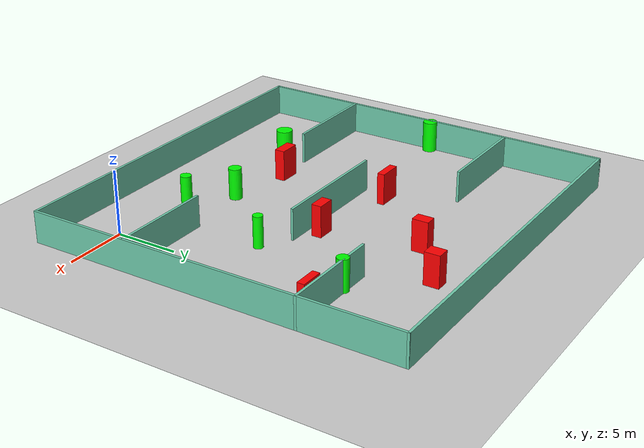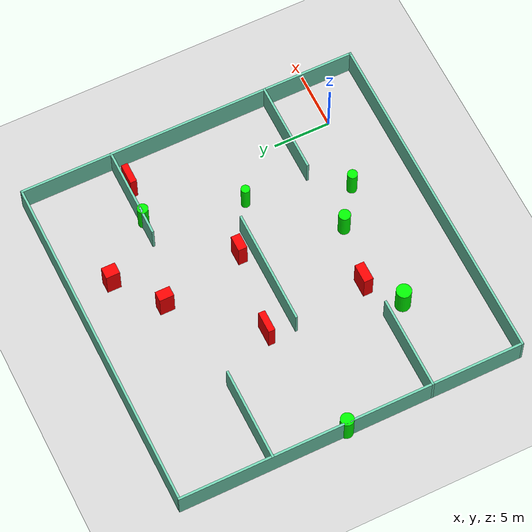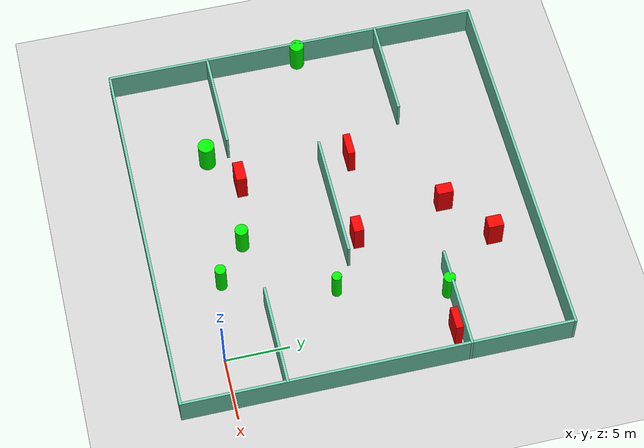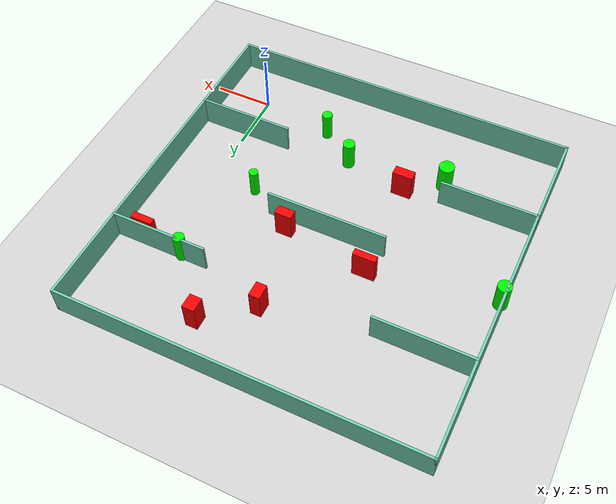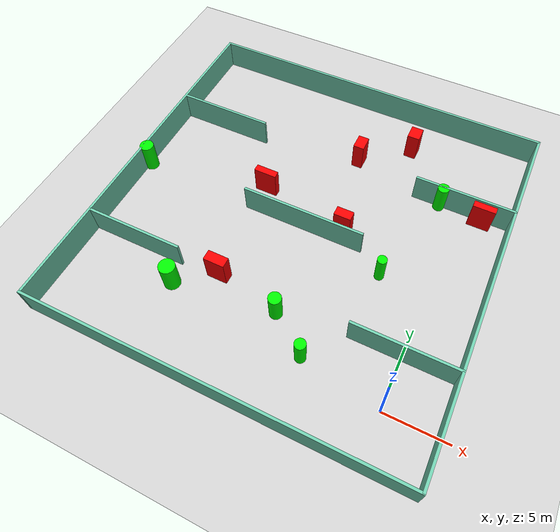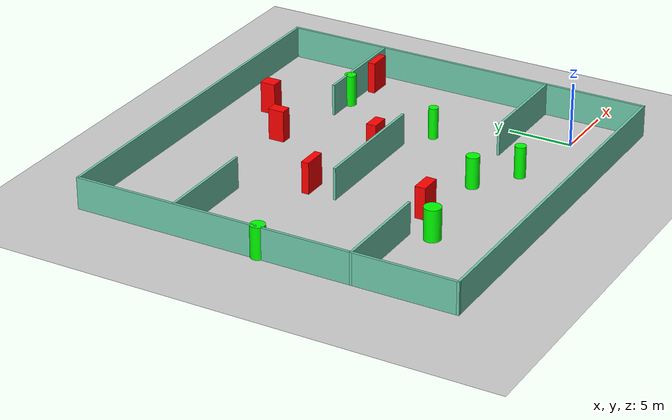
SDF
<sdf version="1.7">
 <world name="default">
  <light name="sun" type="directional">
   <pose>0 0 10 0 -0 0</pose>
   <diffuse>0.8 0.8 0.8 1</diffuse>
   <specular>0.2 0.2 0.2 1</specular>
   <attenuation>
    <range>1000</range>
    <constant>0.9</constant>
    <linear>0.01</linear>
    <quadratic>0.001</quadratic>
   </attenuation>
   <direction>-0.5 0.1 -0.9</direction>
   <spot><inner_angle>0</inner_angle><outer_angle>0</outer_angle><falloff>0</falloff></spot>
  </light>
  <model name="ground_plane">
   <static>1</static>
   <link name="link">
    <collision name="collision">
     <geometry><plane><normal>0 0 1</normal><size>100 100</size></plane></geometry>
     <surface>
      <contact><collide_bitmask>65535</collide_bitmask></contact>
      <friction><ode><mu>100</mu><mu2>50</mu2></ode></friction>
     </surface>
    </collision>
    <visual name="visual">
     <cast_shadows>0</cast_shadows>
     <geometry><plane><normal>0 0 1</normal><size>100 100</size></plane></geometry>
     <material>
      <script><uri>file://media/materials/scripts/gazebo.material</uri><name>Gazebo/Grey</name></script>
     </material>
    </visual>
   </link>
  </model>
  <gravity>0 0 -9.8</gravity>
  <magnetic_field>6e-06 2.3e-05 -4.2e-05</magnetic_field>
  <atmosphere type="adiabatic"/>
  <physics type="ode">
   <max_step_size>0.001</max_step_size>
   <real_time_factor>1</real_time_factor>
   <real_time_update_rate>1000</real_time_update_rate>
  </physics>
  <scene><ambient>0.4 0.4 0.4 1</ambient><background>0.7 0.7 0.7 1</background><shadows>1</shadows></scene>
  <spherical_coordinates>
   <surface_model>EARTH_WGS84</surface_model>
   <latitude_deg>0</latitude_deg>
   <longitude_deg>0</longitude_deg>
   <elevation>0</elevation>
   <heading_deg>0</heading_deg>
  </spherical_coordinates>
  <model name="my_base_walls">
   <link name="Wall_10">
    <collision name="Wall_10_Collision">
     <geometry><box><size>8.2 0.2 2.5</size></box></geometry>
     <pose>0 0 1.25 0 -0 0</pose>
    </collision>
    <visual name="Wall_10_Visual">
     <pose>0 0 1.25 0 -0 0</pose>
     <geometry><box><size>8.2 0.2 2.5</size></box></geometry>
     <material>
      <script><uri>file://media/materials/scripts/gazebo.material</uri><name>Gazebo/Grey</name></script>
      <ambient>0.435294 0.796078 0.67451 1</ambient>
     </material>
     <meta><layer>0</layer></meta>
    </visual>
    <pose>-11 -7 0 0 -0 0</pose>
   </link>
   <link name="Wall_12">
    <collision name="Wall_12_Collision">
     <geometry><box><size>8.2 0.2 2.5</size></box></geometry>
     <pose>0 0 1.25 0 -0 0</pose>
    </collision>
    <visual name="Wall_12_Visual">
     <pose>0 0 1.25 0 -0 0</pose>
     <geometry><box><size>8.2 0.2 2.5</size></box></geometry>
     <material>
      <script><uri>file://media/materials/scripts/gazebo.material</uri><name>Gazebo/Grey</name></script>
      <ambient>0.435294 0.796078 0.67451 1</ambient>
     </material>
     <meta><layer>0</layer></meta>
    </visual>
    <pose>-11 7 0 0 -0 0</pose>
   </link>
   <link name="Wall_14">
    <collision name="Wall_14_Collision">
     <geometry><box><size>8.2 0.2 2.5</size></box></geometry>
     <pose>0 0 1.25 0 -0 0</pose>
    </collision>
    <visual name="Wall_14_Visual">
     <pose>0 0 1.25 0 -0 0</pose>
     <geometry><box><size>8.2 0.2 2.5</size></box></geometry>
     <material>
      <script><uri>file://media/materials/scripts/gazebo.material</uri><name>Gazebo/Grey</name></script>
      <ambient>0.435294 0.796078 0.67451 1</ambient>
     </material>
     <meta><layer>0</layer></meta>
    </visual>
    <pose>11 7 0 0 -0 3.14159</pose>
   </link>
   <link name="Wall_16">
    <collision name="Wall_16_Collision">
     <geometry><box><size>10.2 0.2 2.5</size></box></geometry>
     <pose>0 0 1.25 0 -0 0</pose>
    </collision>
    <visual name="Wall_16_Visual">
     <pose>0 0 1.25 0 -0 0</pose>
     <geometry><box><size>10.2 0.2 2.5</size></box></geometry>
     <material>
      <script><uri>file://media/materials/scripts/gazebo.material</uri><name>Gazebo/Grey</name></script>
      <ambient>0.435294 0.796078 0.67451 1</ambient>
     </material>
     <meta><layer>0</layer></meta>
    </visual>
    <pose>0 0 0 0 -0 3.14159</pose>
   </link>
   <link name="Wall_2">
    <collision name="Wall_2_Collision">
     <geometry><box><size>30.2 0.2 2.5</size></box></geometry>
     <pose>0 0 1.25 0 -0 0</pose>
    </collision>
    <visual name="Wall_2_Visual">
     <pose>0 0 1.25 0 -0 0</pose>
     <geometry><box><size>30.2 0.2 2.5</size></box></geometry>
     <material>
      <script><uri>file://media/materials/scripts/gazebo.material</uri><name>Gazebo/Grey</name></script>
      <ambient>0.435294 0.796078 0.67451 1</ambient>
     </material>
     <meta><layer>0</layer></meta>
    </visual>
    <pose>0 -15 0 0 -0 3.14159</pose>
   </link>
   <link name="Wall_3">
    <collision name="Wall_3_Collision">
     <geometry><box><size>30.2 0.2 2.5</size></box></geometry>
     <pose>0 0 1.25 0 -0 0</pose>
    </collision>
    <visual name="Wall_3_Visual">
     <pose>0 0 1.25 0 -0 0</pose>
     <geometry><box><size>30.2 0.2 2.5</size></box></geometry>
     <material>
      <script><uri>file://media/materials/scripts/gazebo.material</uri><name>Gazebo/Grey</name></script>
      <ambient>0.435294 0.796078 0.67451 1</ambient>
     </material>
     <meta><layer>0</layer></meta>
    </visual>
    <pose>-15 0 0 0 -0 1.5708</pose>
   </link>
   <link name="Wall_4">
    <collision name="Wall_4_Collision">
     <geometry><box><size>30.2 0.2 2.5</size></box></geometry>
     <pose>0 0 1.25 0 -0 0</pose>
    </collision>
    <visual name="Wall_4_Visual">
     <pose>0 0 1.25 0 -0 0</pose>
     <geometry><box><size>30.2 0.2 2.5</size></box></geometry>
     <material>
      <script><uri>file://media/materials/scripts/gazebo.material</uri><name>Gazebo/Grey</name></script>
      <ambient>0.435294 0.796078 0.67451 1</ambient>
     </material>
     <meta><layer>0</layer></meta>
    </visual>
    <pose>0 15 0 0 -0 0</pose>
   </link>
   <link name="Wall_6">
    <collision name="Wall_6_Collision">
     <geometry><box><size>30.2 0.2 2.5</size></box></geometry>
     <pose>0 0 1.25 0 -0 0</pose>
    </collision>
    <visual name="Wall_6_Visual">
     <pose>0 0 1.25 0 -0 0</pose>
     <geometry><box><size>30.2 0.2 2.5</size></box></geometry>
     <material>
      <script><uri>file://media/materials/scripts/gazebo.material</uri><name>Gazebo/Grey</name></script>
      <ambient>0.435294 0.796078 0.67451 1</ambient>
     </material>
     <meta><layer>0</layer></meta>
    </visual>
    <pose>15 0 0 0 -0 1.5708</pose>
   </link>
   <link name="Wall_8">
    <collision name="Wall_8_Collision">
     <geometry><box><size>8.2 0.2 2.5</size></box></geometry>
     <pose>0 0 1.25 0 -0 0</pose>
    </collision>
    <visual name="Wall_8_Visual">
     <pose>0 0 1.25 0 -0 0</pose>
     <geometry><box><size>8.2 0.2 2.5</size></box></geometry>
     <material>
      <script><uri>file://media/materials/scripts/gazebo.material</uri><name>Gazebo/Grey</name></script>
      <ambient>0.435294 0.796078 0.67451 1</ambient>
     </material>
     <meta><layer>0</layer></meta>
    </visual>
    <pose>11 -7 0 0 -0 3.14159</pose>
   </link>
   <static>1</static>
   <pose>-11 11 0 0 -0 0</pose>
  </model>
  <model name="cylinder1">
   <static>1</static>
   <link name="link">
    <inertial>
     <mass>1</mass>
     <inertia><ixx>0.5</ixx><ixy>0</ixy><ixz>0</ixz><iyy>0.5</iyy><iyz>0</iyz><izz>1</izz></inertia>
    </inertial>
    <collision name="collision">
     <geometry><cylinder><radius>0.647250852173672</radius><length>2.5</length></cylinder></geometry>
    </collision>
    <visual name="visual">
     <geometry><cylinder><radius>0.647250852173672</radius><length>2.5</length></cylinder></geometry>
     <material>
      <ambient>0 1 0 1</ambient>
      <diffuse>0 1 0 1</diffuse>
      <specular>0.1 0.1 0.1 1</specular>
      <emissive>0 0 0 0</emissive>
     </material>
    </visual>
   </link>
   <pose>-17.759674718441346 2.2549899728016065 1.25 0 0 0</pose>
  </model>
  <model name="cylinder2">
   <static>1</static>
   <link name="link">
    <inertial>
     <mass>1</mass>
     <inertia><ixx>0.5</ixx><ixy>0</ixy><ixz>0</ixz><iyy>0.5</iyy><iyz>0</iyz><izz>1</izz></inertia>
    </inertial>
    <collision name="collision">
     <geometry><cylinder><radius>0.5104717515263387</radius><length>2.5</length></cylinder></geometry>
    </collision>
    <visual name="visual">
     <geometry><cylinder><radius>0.5104717515263387</radius><length>2.5</length></cylinder></geometry>
     <material>
      <ambient>0 1 0 1</ambient>
      <diffuse>0 1 0 1</diffuse>
      <specular>0.1 0.1 0.1 1</specular>
      <emissive>0 0 0 0</emissive>
     </material>
    </visual>
   </link>
   <pose>-9.498426258376483 3.3697613449313524 1.25 0 0 0</pose>
  </model>
  <model name="cylinder3">
   <static>1</static>
   <link name="link">
    <inertial>
     <mass>1</mass>
     <inertia><ixx>0.5</ixx><ixy>0</ixy><ixz>0</ixz><iyy>0.5</iyy><iyz>0</iyz><izz>1</izz></inertia>
    </inertial>
    <collision name="collision">
     <geometry><cylinder><radius>0.462771679845449</radius><length>2.5</length></cylinder></geometry>
    </collision>
    <visual name="visual">
     <geometry><cylinder><radius>0.462771679845449</radius><length>2.5</length></cylinder></geometry>
     <material>
      <ambient>0 1 0 1</ambient>
      <diffuse>0 1 0 1</diffuse>
      <specular>0.1 0.1 0.1 1</specular>
      <emissive>0 0 0 0</emissive>
     </material>
    </visual>
   </link>
   <pose>-1.764615473745863 17.835802539820964 1.25 0 0 0</pose>
  </model>
  <model name="cylinder4">
   <static>1</static>
   <link name="link">
    <inertial>
     <mass>1</mass>
     <inertia><ixx>0.5</ixx><ixy>0</ixy><ixz>0</ixz><iyy>0.5</iyy><iyz>0</iyz><izz>1</izz></inertia>
    </inertial>
    <collision name="collision">
     <geometry><cylinder><radius>0.43177147147726713</radius><length>2.5</length></cylinder></geometry>
    </collision>
    <visual name="visual">
     <geometry><cylinder><radius>0.43177147147726713</radius><length>2.5</length></cylinder></geometry>
     <material>
      <ambient>0 1 0 1</ambient>
      <diffuse>0 1 0 1</diffuse>
      <specular>0.1 0.1 0.1 1</specular>
      <emissive>0 0 0 0</emissive>
     </material>
    </visual>
   </link>
   <pose>-6.410730180981821 1.0845253836967998 1.25 0 0 0</pose>
  </model>
  <model name="cylinder5">
   <static>1</static>
   <link name="link">
    <inertial>
     <mass>1</mass>
     <inertia><ixx>0.5</ixx><ixy>0</ixy><ixz>0</ixz><iyy>0.5</iyy><iyz>0</iyz><izz>1</izz></inertia>
    </inertial>
    <collision name="collision">
     <geometry><cylinder><radius>0.5707623384650491</radius><length>2.5</length></cylinder></geometry>
    </collision>
    <visual name="visual">
     <geometry><cylinder><radius>0.5707623384650491</radius><length>2.5</length></cylinder></geometry>
     <material>
      <ambient>0 1 0 1</ambient>
      <diffuse>0 1 0 1</diffuse>
      <specular>0.1 0.1 0.1 1</specular>
      <emissive>0 0 0 0</emissive>
     </material>
    </visual>
   </link>
   <pose>-25.751888098305287 11.397775359032838 1.25 0 0 0</pose>
  </model>
  <model name="cylinder6">
   <static>1</static>
   <link name="link">
    <inertial>
     <mass>1</mass>
     <inertia><ixx>0.5</ixx><ixy>0</ixy><ixz>0</ixz><iyy>0.5</iyy><iyz>0</iyz><izz>1</izz></inertia>
    </inertial>
    <collision name="collision">
     <geometry><cylinder><radius>0.3795178338348573</radius><length>2.5</length></cylinder></geometry>
    </collision>
    <visual name="visual">
     <geometry><cylinder><radius>0.3795178338348573</radius><length>2.5</length></cylinder></geometry>
     <material>
      <ambient>0 1 0 1</ambient>
      <diffuse>0 1 0 1</diffuse>
      <specular>0.1 0.1 0.1 1</specular>
      <emissive>0 0 0 0</emissive>
     </material>
    </visual>
   </link>
   <pose>-3.8081524596102447 9.552785345933497 1.25 0 0 0</pose>
  </model>
  <model name="box1">
   <static>1</static>
   <link name="link">
    <inertial>
     <mass>1</mass>
     <inertia><ixx>0.083</ixx><ixy>0</ixy><ixz>0</ixz><iyy>0.083</iyy><iyz>0</iyz><izz>0.083</izz></inertia>
    </inertial>
    <collision name="collision">
     <geometry><box><size>1.0171134848161174 1.2087530708391028 2.5</size></box></geometry>
    </collision>
    <visual name="visual">
     <geometry><box><size>1.0171134848161174 1.2087530708391028 2.5</size></box></geometry>
     <material>
      <ambient>1 0 0 1</ambient>
      <diffuse>1 0 0 1</diffuse>
      <specular>0.1 0.1 0.1 1</specular>
      <emissive>0 0 0 0</emissive>
     </material>
    </visual>
    <sensor name="my_contact" type="contact">
     <contact><collision>box_collision</collision><topic>__default_topic__</topic></contact>
    </sensor>
   </link>
   <pose>-5.771894050991257 22.531519822686874 1.25 0 0 0</pose>
  </model>
  <model name="box2">
   <static>1</static>
   <link name="link">
    <inertial>
     <mass>1</mass>
     <inertia><ixx>0.083</ixx><ixy>0</ixy><ixz>0</ixz><iyy>0.083</iyy><iyz>0</iyz><izz>0.083</izz></inertia>
    </inertial>
    <collision name="collision">
     <geometry><box><size>1.6906917989990526 0.8191590371911806 2.5</size></box></geometry>
    </collision>
    <visual name="visual">
     <geometry><box><size>1.6906917989990526 0.8191590371911806 2.5</size></box></geometry>
     <material>
      <ambient>1 0 0 1</ambient>
      <diffuse>1 0 0 1</diffuse>
      <specular>0.1 0.1 0.1 1</specular>
      <emissive>0 0 0 0</emissive>
     </material>
    </visual>
    <sensor name="my_contact" type="contact">
     <contact><collision>box_collision</collision><topic>__default_topic__</topic></contact>
    </sensor>
   </link>
   <pose>-14.849012851153693 4.346798225371984 1.25 0 0 0</pose>
  </model>
  <model name="box3">
   <static>1</static>
   <link name="link">
    <inertial>
     <mass>1</mass>
     <inertia><ixx>0.083</ixx><ixy>0</ixy><ixz>0</ixz><iyy>0.083</iyy><iyz>0</iyz><izz>0.083</izz></inertia>
    </inertial>
    <collision name="collision">
     <geometry><box><size>0.9006217579344138 1.2720530164364363 2.5</size></box></geometry>
    </collision>
    <visual name="visual">
     <geometry><box><size>0.9006217579344138 1.2720530164364363 2.5</size></box></geometry>
     <material>
      <ambient>1 0 0 1</ambient>
      <diffuse>1 0 0 1</diffuse>
      <specular>0.1 0.1 0.1 1</specular>
      <emissive>0 0 0 0</emissive>
     </material>
    </visual>
    <sensor name="my_contact" type="contact">
     <contact><collision>box_collision</collision><topic>__default_topic__</topic></contact>
    </sensor>
   </link>
   <pose>-9.56323978911597 19.529213448057863 1.25 0 0 0</pose>
  </model>
  <model name="box4">
   <static>1</static>
   <link name="link">
    <inertial>
     <mass>1</mass>
     <inertia><ixx>0.083</ixx><ixy>0</ixy><ixz>0</ixz><iyy>0.083</iyy><iyz>0</iyz><izz>0.083</izz></inertia>
    </inertial>
    <collision name="collision">
     <geometry><box><size>1.8178233766679999 0.5728178256231613 2.5</size></box></geometry>
    </collision>
    <visual name="visual">
     <geometry><box><size>1.8178233766679999 0.5728178256231613 2.5</size></box></geometry>
     <material>
      <ambient>1 0 0 1</ambient>
      <diffuse>1 0 0 1</diffuse>
      <specular>0.1 0.1 0.1 1</specular>
      <emissive>0 0 0 0</emissive>
     </material>
    </visual>
    <sensor name="my_contact" type="contact">
     <contact><collision>box_collision</collision><topic>__default_topic__</topic></contact>
    </sensor>
   </link>
   <pose>1.7235528802268405 17.448422638492943 1.25 0 0 0</pose>
  </model>
  <model name="box5">
   <static>1</static>
   <link name="link">
    <inertial>
     <mass>1</mass>
     <inertia><ixx>0.083</ixx><ixy>0</ixy><ixz>0</ixz><iyy>0.083</iyy><iyz>0</iyz><izz>0.083</izz></inertia>
    </inertial>
    <collision name="collision">
     <geometry><box><size>1.884632593428082 0.5812677662576972 2.5</size></box></geometry>
    </collision>
    <visual name="visual">
     <geometry><box><size>1.884632593428082 0.5812677662576972 2.5</size></box></geometry>
     <material>
      <ambient>1 0 0 1</ambient>
      <diffuse>1 0 0 1</diffuse>
      <specular>0.1 0.1 0.1 1</specular>
      <emissive>0 0 0 0</emissive>
     </material>
    </visual>
    <sensor name="my_contact" type="contact">
     <contact><collision>box_collision</collision><topic>__default_topic__</topic></contact>
    </sensor>
   </link>
   <pose>-15.360085384090182 13.285970385789028 1.25 0 0 0</pose>
  </model>
  <model name="box6">
   <static>1</static>
   <link name="link">
    <inertial>
     <mass>1</mass>
     <inertia><ixx>0.083</ixx><ixy>0</ixy><ixz>0</ixz><iyy>0.083</iyy><iyz>0</iyz><izz>0.083</izz></inertia>
    </inertial>
    <collision name="collision">
     <geometry><box><size>1.4071332965997971 0.7915123214872382 2.5</size></box></geometry>
    </collision>
    <visual name="visual">
     <geometry><box><size>1.4071332965997971 0.7915123214872382 2.5</size></box></geometry>
     <material>
      <ambient>1 0 0 1</ambient>
      <diffuse>1 0 0 1</diffuse>
      <specular>0.1 0.1 0.1 1</specular>
      <emissive>0 0 0 0</emissive>
     </material>
    </visual>
    <sensor name="my_contact" type="contact">
     <contact><collision>box_collision</collision><topic>__default_topic__</topic></contact>
    </sensor>
   </link>
   <pose>-7.989508541851677 12.152739828944462 1.25 0 0 0</pose>
  </model>
 </world>
</sdf>
